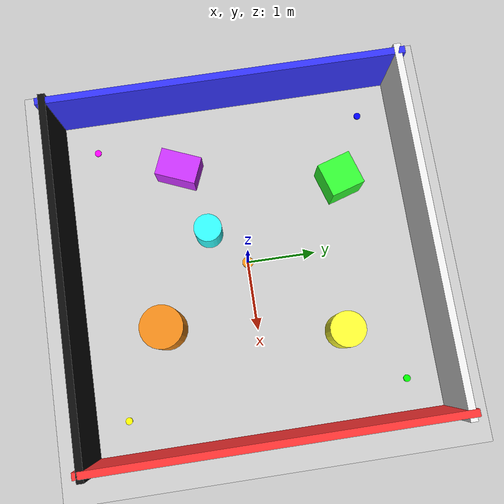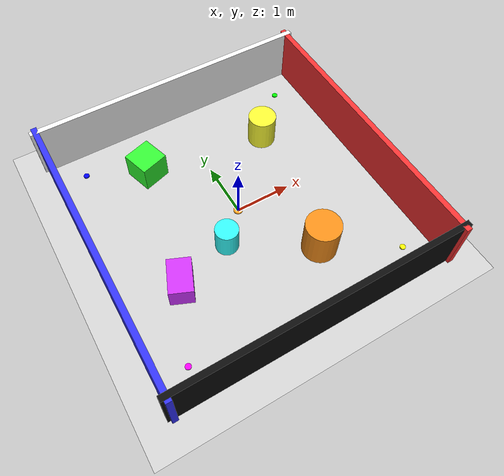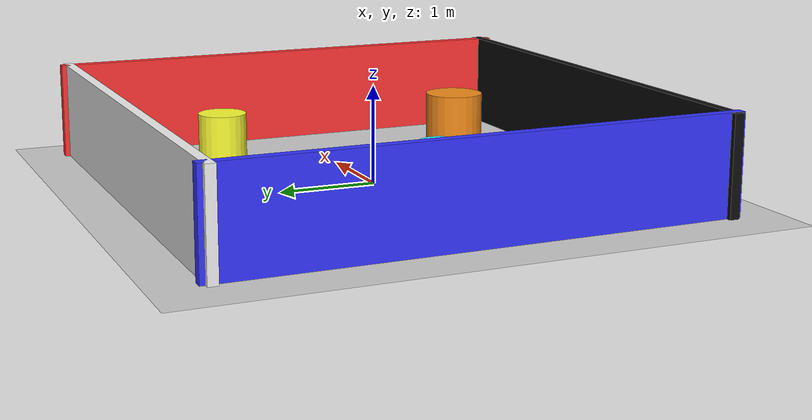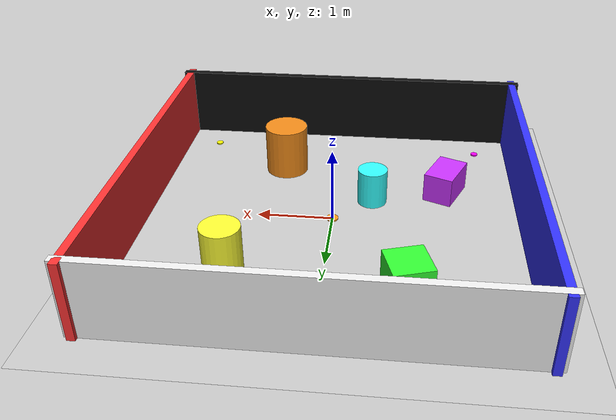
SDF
<?xml version="1.0" ?>

<sdf version="1.6">
  <world name="navigation_5x5_rgbd">

    <!-- Physics Configuration / 物理配置                                    -->
    <!-- Using Bullet physics engine for multi-threading support            -->
    <!-- 使用 Bullet 物理引擎支持多线程，提升 RTF                            -->
    <physics type="bullet">
      <!-- 步长 0.006：经过测试的稳定值 / Step 0.006 tested stable -->
      <max_step_size>0.0075</max_step_size>
      <real_time_factor>1</real_time_factor>
      <!-- 150Hz：合理的更新频率 / Reasonable update rate -->
      <real_time_update_rate>150</real_time_update_rate>
      <gravity>0 0 -9.8</gravity>
      <bullet>
        <solver>
          <!-- Sequential Impulse：Bullet 默认求解器，支持多线程 -->
          <type>sequential_impulse</type>
          <!-- 迭代次数：从 ODE 的 30 开始测试 -->
          <iters>25</iters>
          <!-- SOR 参数：Bullet 默认 1.0 -->
          <sor>1.0</sor>
        </solver>
        <constraints>
          <!-- CFM: Bullet 中的约束力混合参数 -->
          <cfm>0.0001</cfm>
          <!-- ERP: 误差修正参数，Bullet 默认 0.2 -->
          <erp>0.2</erp>
          <!-- Contact surface layer: 接触面厚度 -->
          <contact_surface_layer>0.001</contact_surface_layer>
        </constraints>
      </bullet>
    </physics>

    <!-- Scene Configuration / 场景配置                                      -->
    <scene>
      <ambient>0.5 0.5 0.5 1</ambient>
      <background>0.7 0.8 0.9 1</background>
      <shadows>false</shadows>
    </scene>

    <!-- Lighting / 照明                                                     -->
    <!-- Multiple light sources for RGBD camera depth accuracy               -->
    <!-- 多个光源确保RGBD摄像机深度精度                                       -->

    <!-- Main directional light / 主方向光 -->
    <light name="sun" type="directional">
      <cast_shadows>false</cast_shadows>
      <pose>0 0 10 0 0 0</pose>
      <diffuse>0.8 0.8 0.8 1</diffuse>
      <specular>0.2 0.2 0.2 1</specular>
      <attenuation>
        <range>1000</range>
        <constant>0.9</constant>
        <linear>0.01</linear>
        <quadratic>0.001</quadratic>
      </attenuation>
      <direction>-0.5 0.1 -0.9</direction>
    </light>

    <!-- Fill light for shadow reduction / 补光减少阴影 -->
    <light name="fill_light" type="point">
      <pose>0 0 3 0 0 0</pose>
      <diffuse>0.6 0.6 0.6 1</diffuse>
      <specular>0.1 0.1 0.1 1</specular>
      <attenuation>
        <range>10</range>
        <constant>0.8</constant>
        <linear>0.02</linear>
        <quadratic>0.002</quadratic>
      </attenuation>
    </light>

    <!-- Ground Plane - Absolutely Flat / 地面 - 绝对平整                    -->
    <!-- Critical for stable robot movement and accurate depth sensing      -->
    <!-- 对机器人稳定移动和准确深度感知至关重要                               -->
    <model name="ground_plane">
      <static>true</static>
      <!-- Perfectly level at z=0 / 在z=0处完全水平 -->
      <pose>0 0 0 0 0 0</pose>
      <link name="link">
        <collision name="collision">
          <geometry>
            <plane>
              <normal>0 0 1</normal>
              <size>15 15</size>
            </plane>
          </geometry>
          <surface>
            <friction>
              <ode>
                <mu>100</mu>
                <mu2>50</mu2>
              </ode>
            </friction>
          </surface>
        </collision>
        <visual name="visual">
          <geometry>
            <plane>
              <normal>0 0 1</normal>
              <size>15 15</size>
            </plane>
          </geometry>
          <material>
            <script>
              <uri>file://media/materials/scripts/gazebo.material</uri>
              <name>Gazebo/Concrete</name>
            </script>
          </material>
        </visual>
      </link>
    </model>

    <!-- 5m x 5m Textured Walls / 5米x5米纹理墙体                            -->
    <!-- High-contrast materials for RGBD camera edge detection              -->
    <!-- 高对比度材质，便于RGBD摄像机边缘检测                                 -->

    <!-- North Wall - High contrast white / 北墙 - 高对比度白色 -->
    <model name="wall_north">
      <static>true</static>
      <pose>0 2.5 0.5 0 0 0</pose>
      <link name="link">
        <collision name="collision">
          <geometry>
            <box><size>5.2 0.1 1.0</size></box>
          </geometry>
        </collision>
        <visual name="visual">
          <geometry>
            <box><size>5.2 0.1 1.0</size></box>
          </geometry>
          <material>
            <ambient>0.9 0.9 0.9 1</ambient>
            <diffuse>0.95 0.95 0.95 1</diffuse>
            <specular>0.1 0.1 0.1 1</specular>
          </material>
        </visual>
      </link>
    </model>

    <!-- South Wall - High contrast black / 南墙 - 高对比度黑色 -->
    <model name="wall_south">
      <static>true</static>
      <pose>0 -2.5 0.5 0 0 0</pose>
      <link name="link">
        <collision name="collision">
          <geometry>
            <box><size>5.2 0.1 1.0</size></box>
          </geometry>
        </collision>
        <visual name="visual">
          <geometry>
            <box><size>5.2 0.1 1.0</size></box>
          </geometry>
          <material>
            <ambient>0.1 0.1 0.1 1</ambient>
            <diffuse>0.05 0.05 0.05 1</diffuse>
            <specular>0.3 0.3 0.3 1</specular>
          </material>
        </visual>
      </link>
    </model>

    <!-- East Wall - Bright red / 东墙 - 亮红色 -->
    <model name="wall_east">
      <static>true</static>
      <pose>2.5 0 0.5 0 0 1.5708</pose>
      <link name="link">
        <collision name="collision">
          <geometry>
            <box><size>5.2 0.1 1.0</size></box>
          </geometry>
        </collision>
        <visual name="visual">
          <geometry>
            <box><size>5.2 0.1 1.0</size></box>
          </geometry>
          <material>
            <ambient>0.8 0.1 0.1 1</ambient>
            <diffuse>1.0 0.2 0.2 1</diffuse>
            <specular>0.2 0.05 0.05 1</specular>
          </material>
        </visual>
      </link>
    </model>

    <!-- West Wall - Bright blue / 西墙 - 亮蓝色 -->
    <model name="wall_west">
      <static>true</static>
      <pose>-2.5 0 0.5 0 0 1.5708</pose>
      <link name="link">
        <collision name="collision">
          <geometry>
            <box><size>5.2 0.1 1.0</size></box>
          </geometry>
        </collision>
        <visual name="visual">
          <geometry>
            <box><size>5.2 0.1 1.0</size></box>
          </geometry>
          <material>
            <ambient>0.1 0.1 0.8 1</ambient>
            <diffuse>0.2 0.2 1.0 1</diffuse>
            <specular>0.05 0.05 0.2 1</specular>
          </material>
        </visual>
      </link>
    </model>

    <!-- RGBD Camera-Friendly Obstacles / RGBD摄像机友好障碍物                -->
    <!-- 5 obstacles with varied shapes, colors, and textures               -->
    <!-- 5个障碍物，具有不同的形状、颜色和纹理                               -->

    <!-- Obstacle 1: Bright yellow cylinder / 障碍物1：亮黄色圆柱 -->
    <model name="obstacle_cylinder_yellow">
      <static>true</static>
      <pose>1.2 1.2 0.3 0 0 0</pose>
      <link name="link">
        <collision name="collision">
          <geometry>
            <cylinder>
              <radius>0.25</radius>
              <length>0.6</length>
            </cylinder>
          </geometry>
        </collision>
        <visual name="visual">
          <geometry>
            <cylinder>
              <radius>0.25</radius>
              <length>0.6</length>
            </cylinder>
          </geometry>
          <material>
            <ambient>0.9 0.9 0.1 1</ambient>
            <diffuse>1.0 1.0 0.2 1</diffuse>
            <specular>0.2 0.2 0.05 1</specular>
          </material>
        </visual>
      </link>
    </model>

    <!-- Obstacle 2: Bright green box / 障碍物2：亮绿色方块 -->
    <model name="obstacle_box_green">
      <static>true</static>
      <pose>-1.0 1.5 0.25 0 0 0.3</pose>
      <link name="link">
        <collision name="collision">
          <geometry>
            <box><size>0.5 0.5 0.5</size></box>
          </geometry>
        </collision>
        <visual name="visual">
          <geometry>
            <box><size>0.5 0.5 0.5</size></box>
          </geometry>
          <material>
            <ambient>0.1 0.9 0.1 1</ambient>
            <diffuse>0.2 1.0 0.2 1</diffuse>
            <specular>0.05 0.2 0.05 1</specular>
          </material>
        </visual>
      </link>
    </model>

    <!-- Obstacle 3: Orange cylinder with texture / 障碍物3：橙色带纹理圆柱 -->
    <model name="obstacle_cylinder_orange">
      <static>true</static>
      <pose>0.8 -1.3 0.35 0 0 0</pose>
      <link name="link">
        <collision name="collision">
          <geometry>
            <cylinder>
              <radius>0.3</radius>
              <length>0.7</length>
            </cylinder>
          </geometry>
        </collision>
        <visual name="visual">
          <geometry>
            <cylinder>
              <radius>0.3</radius>
              <length>0.7</length>
            </cylinder>
          </geometry>
          <material>
            <script>
              <uri>file://media/materials/scripts/gazebo.material</uri>
              <name>Gazebo/Orange</name>
            </script>
          </material>
        </visual>
      </link>
    </model>

    <!-- Obstacle 4: Purple box with wood texture / 障碍物4：紫色带木纹方块 -->
    <model name="obstacle_box_purple">
      <static>true</static>
      <pose>-1.5 -0.8 0.2 0 0 -0.4</pose>
      <link name="link">
        <collision name="collision">
          <geometry>
            <box><size>0.4 0.6 0.4</size></box>
          </geometry>
        </collision>
        <visual name="visual">
          <geometry>
            <box><size>0.4 0.6 0.4</size></box>
          </geometry>
          <material>
            <ambient>0.6 0.1 0.8 1</ambient>
            <diffuse>0.8 0.2 1.0 1</diffuse>
            <specular>0.1 0.02 0.15 1</specular>
          </material>
        </visual>
      </link>
    </model>

    <!-- Obstacle 5: Cyan cylinder - high visibility / 障碍物5：青色圆柱 - 高可见性 -->
    <model name="obstacle_cylinder_cyan">
      <static>true</static>
      <pose>-0.5 -0.5 0.25 0 0 0</pose>
      <link name="link">
        <collision name="collision">
          <geometry>
            <cylinder>
              <radius>0.2</radius>
              <length>0.5</length>
            </cylinder>
          </geometry>
        </collision>
        <visual name="visual">
          <geometry>
            <cylinder>
              <radius>0.2</radius>
              <length>0.5</length>
            </cylinder>
          </geometry>
          <material>
            <ambient>0.1 0.8 0.8 1</ambient>
            <diffuse>0.2 1.0 1.0 1</diffuse>
            <specular>0.05 0.15 0.15 1</specular>
          </material>
        </visual>
      </link>
    </model>

    <!-- Navigation Reference Markers / 导航参考标记                          -->
    <!-- Visual markers for testing and calibration                         -->
    <!-- 用于测试和校准的视觉标记                                             -->

    <!-- Center marker / 中心标记 -->
    <model name="center_marker">
      <static>true</static>
      <pose>0 0 0.01 0 0 0</pose>
      <link name="link">
        <visual name="visual">
          <geometry>
            <cylinder>
              <radius>0.08</radius>
              <length>0.02</length>
            </cylinder>
          </geometry>
          <material>
            <ambient>1 0.5 0 1</ambient>
            <diffuse>1 0.6 0.1 1</diffuse>
          </material>
        </visual>
      </link>
    </model>

    <!-- Corner markers / 角落标记 -->
    <model name="corner_marker_ne">
      <static>true</static>
      <pose>2 2 0.01 0 0 0</pose>
      <link name="link">
        <visual name="visual">
          <geometry>
            <cylinder>
              <radius>0.05</radius>
              <length>0.02</length>
            </cylinder>
          </geometry>
          <material>
            <ambient>0 1 0 1</ambient>
            <diffuse>0 1 0 1</diffuse>
          </material>
        </visual>
      </link>
    </model>

    <model name="corner_marker_nw">
      <static>true</static>
      <pose>-2 2 0.01 0 0 0</pose>
      <link name="link">
        <visual name="visual">
          <geometry>
            <cylinder>
              <radius>0.05</radius>
              <length>0.02</length>
            </cylinder>
          </geometry>
          <material>
            <ambient>0 0 1 1</ambient>
            <diffuse>0 0 1 1</diffuse>
          </material>
        </visual>
      </link>
    </model>

    <model name="corner_marker_se">
      <static>true</static>
      <pose>2 -2 0.01 0 0 0</pose>
      <link name="link">
        <visual name="visual">
          <geometry>
            <cylinder>
              <radius>0.05</radius>
              <length>0.02</length>
            </cylinder>
          </geometry>
          <material>
            <ambient>1 1 0 1</ambient>
            <diffuse>1 1 0 1</diffuse>
          </material>
        </visual>
      </link>
    </model>

    <model name="corner_marker_sw">
      <static>true</static>
      <pose>-2 -2 0.01 0 0 0</pose>
      <link name="link">
        <visual name="visual">
          <geometry>
            <cylinder>
              <radius>0.05</radius>
              <length>0.02</length>
            </cylinder>
          </geometry>
          <material>
            <ambient>1 0 1 1</ambient>
            <diffuse>1 0 1 1</diffuse>
          </material>
        </visual>
      </link>
    </model>

  </world>
</sdf>
